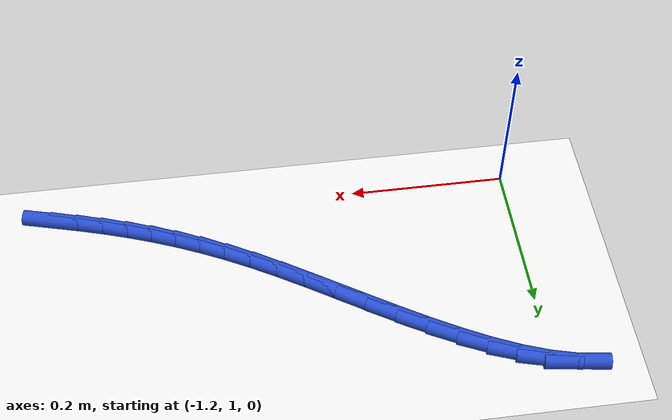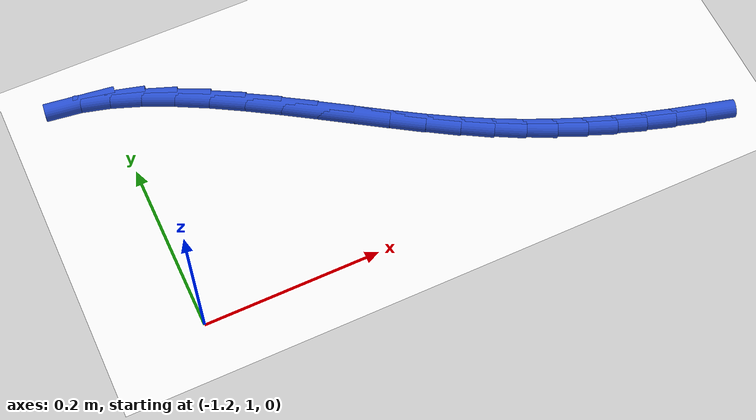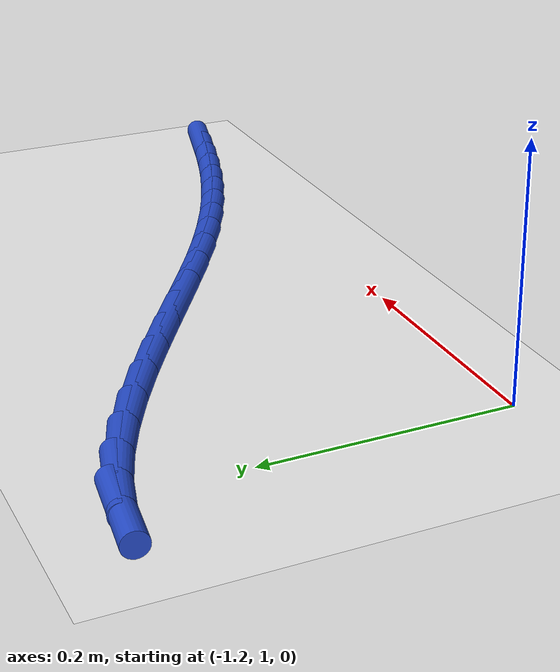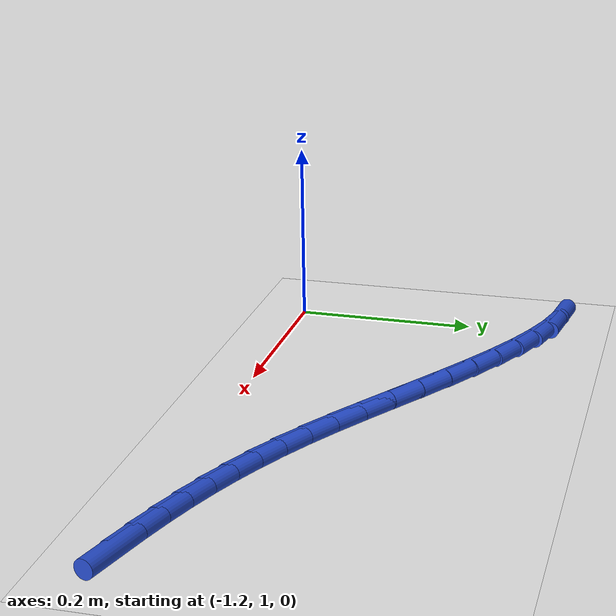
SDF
<sdf version="1.6">
 <world name="default">
  <model name="ground_plane">
   <static>1</static>
   <link name="link">
    <collision name="collision">
     <geometry><plane><normal>0 0 1</normal><size>100 100</size></plane></geometry>
     <surface><friction><ode><mu>100</mu><mu2>50</mu2></ode></friction></surface>
    </collision>
    <visual name="visual">
     <cast_shadows>0</cast_shadows>
     <geometry><plane><normal>0 0 1</normal><size>100 100</size></plane></geometry>
     <material>
      <script><uri>file://media/materials/scripts/gazebo.material</uri><name>Gazebo/WhiteGlow</name></script>
     </material>
    </visual>
   </link>
  </model>
  <model name="line">
   <link name="link_38">
    <pose>-0.6089297309856214 1.0021456268775741 0.01 0 1.57 -0.26472490879722876</pose>
    <collision name="collision">
     <geometry><cylinder><radius>0.01</radius><length>0.08</length></cylinder></geometry>
    </collision>
    <visual name="visual">
     <material>
      <script><name>Gazebo/Blue</name><uri>file://media/materials/scripts/gazebo.material</uri></script>
     </material>
     <geometry><cylinder><radius>0.01</radius><length>0.08</length></cylinder></geometry>
    </visual>
   </link>
   <link name="link_39">
    <pose>-0.6421563383784145 1.0111529356789852 0.01 0 1.57 -0.2897821033669454</pose>
    <collision name="collision">
     <geometry><cylinder><radius>0.01</radius><length>0.08</length></cylinder></geometry>
    </collision>
    <visual name="visual">
     <material>
      <script><name>Gazebo/Blue</name><uri>file://media/materials/scripts/gazebo.material</uri></script>
     </material>
     <geometry><cylinder><radius>0.01</radius><length>0.08</length></cylinder></geometry>
    </visual>
   </link>
   <link name="link_40">
    <pose>-0.6741618318921627 1.0206961897621964 0.01 0 1.57 -0.3191148517211513</pose>
    <collision name="collision">
     <geometry><cylinder><radius>0.01</radius><length>0.08</length></cylinder></geometry>
    </collision>
    <visual name="visual">
     <material>
      <script><name>Gazebo/Blue</name><uri>file://media/materials/scripts/gazebo.material</uri></script>
     </material>
     <geometry><cylinder><radius>0.01</radius><length>0.08</length></cylinder></geometry>
    </visual>
   </link>
   <link name="link_41">
    <pose>-0.7052455158763539 1.0309664670648213 0.01 0 1.57 -0.3520025938738875</pose>
    <collision name="collision">
     <geometry><cylinder><radius>0.01</radius><length>0.08</length></cylinder></geometry>
    </collision>
    <visual name="visual">
     <material>
      <script><name>Gazebo/Blue</name><uri>file://media/materials/scripts/gazebo.material</uri></script>
     </material>
     <geometry><cylinder><radius>0.01</radius><length>0.08</length></cylinder></geometry>
    </visual>
   </link>
   <link name="link_42">
    <pose>-0.735706694680476 1.0421548455244727 0.01 0 1.57 -0.3874197609356239</pose>
    <collision name="collision">
     <geometry><cylinder><radius>0.01</radius><length>0.08</length></cylinder></geometry>
    </collision>
    <visual name="visual">
     <material>
      <script><name>Gazebo/Blue</name><uri>file://media/materials/scripts/gazebo.material</uri></script>
     </material>
     <geometry><cylinder><radius>0.01</radius><length>0.08</length></cylinder></geometry>
    </visual>
   </link>
   <link name="link_43">
    <pose>-0.765844672654017 1.054452403078764 0.01 0 1.57 -0.4241366729015961</pose>
    <collision name="collision">
     <geometry><cylinder><radius>0.01</radius><length>0.08</length></cylinder></geometry>
    </collision>
    <visual name="visual">
     <material>
      <script><name>Gazebo/Blue</name><uri>file://media/materials/scripts/gazebo.material</uri></script>
     </material>
     <geometry><cylinder><radius>0.01</radius><length>0.08</length></cylinder></geometry>
    </visual>
   </link>
   <link name="link_44">
    <pose>-0.7959587541464647 1.068050217665308 0.01 0 1.57 -0.4608639670771905</pose>
    <collision name="collision">
     <geometry><cylinder><radius>0.01</radius><length>0.08</length></cylinder></geometry>
    </collision>
    <visual name="visual">
     <material>
      <script><name>Gazebo/Blue</name><uri>file://media/materials/scripts/gazebo.material</uri></script>
     </material>
     <geometry><cylinder><radius>0.01</radius><length>0.08</length></cylinder></geometry>
    </visual>
   </link>
   <link name="link_45">
    <pose>-0.8263482435073073 1.0831393672217182 0.01 0 1.57 -0.49640494035453653</pose>
    <collision name="collision">
     <geometry><cylinder><radius>0.01</radius><length>0.08</length></cylinder></geometry>
    </collision>
    <visual name="visual">
     <material>
      <script><name>Gazebo/Blue</name><uri>file://media/materials/scripts/gazebo.material</uri></script>
     </material>
     <geometry><cylinder><radius>0.01</radius><length>0.08</length></cylinder></geometry>
    </visual>
   </link>
   <link name="link_46">
    <pose>-0.8573124450860327 1.0999109296856076 0.01 0 1.57 -0.5297279434090891</pose>
    <collision name="collision">
     <geometry><cylinder><radius>0.01</radius><length>0.08</length></cylinder></geometry>
    </collision>
    <visual name="visual">
     <material>
      <script><name>Gazebo/Blue</name><uri>file://media/materials/scripts/gazebo.material</uri></script>
     </material>
     <geometry><cylinder><radius>0.01</radius><length>0.08</length></cylinder></geometry>
    </visual>
   </link>
   <link name="link_47">
    <pose>-0.8891484954340187 1.1185525804634986 0.01 0 1.57 -0.5564569329561805</pose>
    <collision name="collision">
     <geometry><cylinder><radius>0.01</radius><length>0.08</length></cylinder></geometry>
    </collision>
    <visual name="visual">
     <material>
      <script><name>Gazebo/Blue</name><uri>file://media/materials/scripts/gazebo.material</uri></script>
     </material>
     <geometry><cylinder><radius>0.01</radius><length>0.08</length></cylinder></geometry>
    </visual>
   </link>
   <link name="link_48">
    <pose>-0.9219746853256074 1.138971282328219 0.01 0 1.57 -0.571351419566026</pose>
    <collision name="collision">
     <geometry><cylinder><radius>0.01</radius><length>0.08</length></cylinder></geometry>
    </collision>
    <visual name="visual">
     <material>
      <script><name>Gazebo/Blue</name><uri>file://media/materials/scripts/gazebo.material</uri></script>
     </material>
     <geometry><cylinder><radius>0.01</radius><length>0.08</length></cylinder></geometry>
    </visual>
   </link>
   <link name="link_49">
    <pose>-0.9555996762825264 1.1605880103798027 0.01 0 1.57 -0.5754763204242745</pose>
    <collision name="collision">
     <geometry><cylinder><radius>0.01</radius><length>0.08</length></cylinder></geometry>
    </collision>
    <visual name="visual">
     <material>
      <script><name>Gazebo/Blue</name><uri>file://media/materials/scripts/gazebo.material</uri></script>
     </material>
     <geometry><cylinder><radius>0.01</radius><length>0.08</length></cylinder></geometry>
    </visual>
   </link>
   <link name="link_50">
    <pose>-0.9898013090590866 1.18277536407902 0.01 0 1.57 -0.5696141984370579</pose>
    <collision name="collision">
     <geometry><cylinder><radius>0.01</radius><length>0.08</length></cylinder></geometry>
    </collision>
    <visual name="visual">
     <material>
      <script><name>Gazebo/Blue</name><uri>file://media/materials/scripts/gazebo.material</uri></script>
     </material>
     <geometry><cylinder><radius>0.01</radius><length>0.08</length></cylinder></geometry>
    </visual>
   </link>
   <link name="link_51">
    <pose>-1.0243574244095994 1.20490594288664 0.01 0 1.57 -0.5537364106939168</pose>
    <collision name="collision">
     <geometry><cylinder><radius>0.01</radius><length>0.08</length></cylinder></geometry>
    </collision>
    <visual name="visual">
     <material>
      <script><name>Gazebo/Blue</name><uri>file://media/materials/scripts/gazebo.material</uri></script>
     </material>
     <geometry><cylinder><radius>0.01</radius><length>0.08</length></cylinder></geometry>
    </visual>
   </link>
   <link name="link_52">
    <pose>-1.0590458630883752 1.2263523462634318 0.01 0 1.57 -0.5270453845238067</pose>
    <collision name="collision">
     <geometry><cylinder><radius>0.01</radius><length>0.08</length></cylinder></geometry>
    </collision>
    <visual name="visual">
     <material>
      <script><name>Gazebo/Blue</name><uri>file://media/materials/scripts/gazebo.material</uri></script>
     </material>
     <geometry><cylinder><radius>0.01</radius><length>0.08</length></cylinder></geometry>
    </visual>
   </link>
   <link name="link_53">
    <pose>-1.0936444658497246 1.2464871736701642 0.01 0 1.57 -0.4879037341892201</pose>
    <collision name="collision">
     <geometry><cylinder><radius>0.01</radius><length>0.08</length></cylinder></geometry>
    </collision>
    <visual name="visual">
     <material>
      <script><name>Gazebo/Blue</name><uri>file://media/materials/scripts/gazebo.material</uri></script>
     </material>
     <geometry><cylinder><radius>0.01</radius><length>0.08</length></cylinder></geometry>
    </visual>
   </link>
   <link name="link_54">
    <pose>-1.1279310734479593 1.2646830245676064 0.01 0 1.57 -0.43366292454285515</pose>
    <collision name="collision">
     <geometry><cylinder><radius>0.01</radius><length>0.08</length></cylinder></geometry>
    </collision>
    <visual name="visual">
     <material>
      <script><name>Gazebo/Blue</name><uri>file://media/materials/scripts/gazebo.material</uri></script>
     </material>
     <geometry><cylinder><radius>0.01</radius><length>0.08</length></cylinder></geometry>
    </visual>
   </link>
   <link name="link_55">
    <pose>-1.1616835266373888 1.2803124984165275 0.01 0 1.57 -0.36042082061415953</pose>
    <collision name="collision">
     <geometry><cylinder><radius>0.01</radius><length>0.08</length></cylinder></geometry>
    </collision>
    <visual name="visual">
     <material>
      <script><name>Gazebo/Blue</name><uri>file://media/materials/scripts/gazebo.material</uri></script>
     </material>
     <geometry><cylinder><radius>0.01</radius><length>0.08</length></cylinder></geometry>
    </visual>
   </link>
   <link name="link_56">
    <pose>-1.194679666172325 1.2927481946776969 0.01 0 1.57 -0.26283097569274455</pose>
    <collision name="collision">
     <geometry><cylinder><radius>0.01</radius><length>0.08</length></cylinder></geometry>
    </collision>
    <visual name="visual">
     <material>
      <script><name>Gazebo/Blue</name><uri>file://media/materials/scripts/gazebo.material</uri></script>
     </material>
     <geometry><cylinder><radius>0.01</radius><length>0.08</length></cylinder></geometry>
    </visual>
   </link>
   <link name="link_57">
    <pose>-1.2266973328070785 1.3013627128118834 0.01 0 1.57 -0.1343684575006586</pose>
    <collision name="collision">
     <geometry><cylinder><radius>0.01</radius><length>0.08</length></cylinder></geometry>
    </collision>
    <visual name="visual">
     <material>
      <script><name>Gazebo/Blue</name><uri>file://media/materials/scripts/gazebo.material</uri></script>
     </material>
     <geometry><cylinder><radius>0.01</radius><length>0.08</length></cylinder></geometry>
    </visual>
   </link>
  </model>
 </world>
</sdf>
